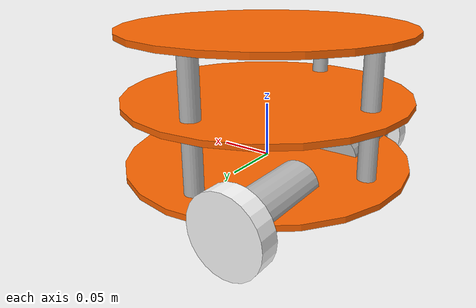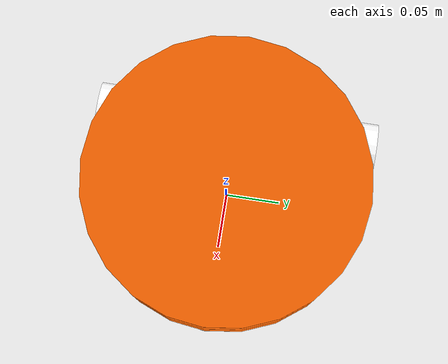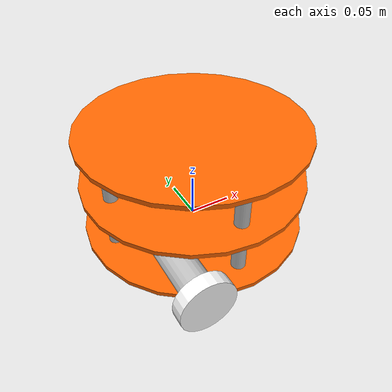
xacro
<?xml version="1.0"?>
<robot name="mrobot" xmlns:xacro="http://www.ros.org/wiki/xacro">
    <xacro:include filename="$(find lesson8_xacro)/urdf/common.urdf.xacro" />
    <xacro:include filename="$(find lesson8_xacro)/urdf/chassis.urdf.xacro" />
    <xacro:include filename="$(find lesson8_xacro)/urdf/brace.urdf.xacro" />
    <xacro:include filename="$(find lesson8_xacro)/urdf/high_joint.urdf.xacro" />

    <joint name="base_left_motor_joint" type="fixed">
        <origin xyz="-0.055 0.075 0.0" rpy="0.0 0.0 0.0"/>
        <parent link="base_link_0"/>
        <child link="left_motor"/>
    </joint>

    <link name="left_motor">
        <visual>
            <origin xyz="0.0 0.0 0.0" rpy="1.5707 0.0 0.0"/>
            <geometry>
                <cylinder radius="${motor_radius}" length="${motor_length}"/>
            </geometry>
            <material name="gray">
                <color rgba="0.75 0.75 0.75 1.0"/>
            </material>
        </visual>
    </link>

    <joint name="left_wheel_joint" type="continuous">
        <origin xyz="0.0 0.0485 0.0" rpy="0.0 0.0 0.0"/>
        <parent link="left_motor"/>
        <child link="left_wheel_link"/>
        <axis xyz="0.0 1.0 0.0"/>
    </joint>

    <link name="left_wheel_link">
        <visual>
            <origin xyz="0.0 0.0 0.0" rpy="1.5707 0.0 0.0"/>
            <geometry>
                <cylinder radius="${wheel_radius}" length="${wheel_length}"/>
            </geometry>
            <material name="white">
                <color rgba="1.0 1.0 1.0 0.9"/>
            </material>
        </visual>
    </link>

    <joint name="base_right_motor_joint" type="fixed">
        <origin xyz="-0.055 -0.075 0.0" rpy="0.0 0.0 0.0"/>
        <parent link="base_link_0"/>
        <child link="right_motor"/>
    </joint>

    <link name="right_motor">
        <visual>
            <origin xyz="0.0 0.0 0.0" rpy="1.5707 0 0"/>
            <geometry>
                <cylinder radius="${motor_radius}" length="${motor_length}"/>
            </geometry>
            <material name="gray">
                <color rgba="0.75 0.75 0.75 1"/>
            </material>
        </visual>
    </link>

    <joint name="right_wheel_joint" type="continuous">
        <origin xyz="0.0 -0.0485 0.0" rpy="0.0 0.0 0.0"/>
        <parent link="right_motor"/>
        <child link="right_wheel_link"/>
        <axis xyz="0.0 1.0 0.0"/>
    </joint>

    <link name="right_wheel_link">
        <visual>
            <origin xyz="0.0 0.0 0.0" rpy="1.5707 0.0 0.0"/>
            <geometry>
                <cylinder radius="${wheel_radius}" length="${wheel_length}"/>
            </geometry>
            <material name="white">
                <color rgba="1.0 1.0 1.0 0.9"/>
            </material>
        </visual>
    </link>

    <joint name="front_castor_joint" type="fixed">
        <origin xyz="0.1135 0.0 -0.0165" rpy="0.0 0.0 0.0"/>
        <parent link="base_link_0"/>
        <child link="front_castort_link"/>
        <axis xyz="0.0 1.0 0.0"/>
    </joint>

    <link name="front_castort_link">
        <visual>
            <origin xyz="0.0 0.0 0.0" rpy="1.5707 0.0 0.0"/>
            <geometry>
                <sphere radius="0.0165"/>
            </geometry>
            <material name="black">
                <color rgba="0.0 0.0 0.0 0.95"/>
            </material>
        </visual>
    </link>

    <xacro:robot_chassis index="0" />

    <xacro:robot_brace index="0" parent="base_link_0" />

    <xacro:robot_high_joint index="0" />

    <xacro:robot_chassis index="1" />

    <xacro:robot_brace index="1" parent="base_link_1" />

    <xacro:robot_high_joint index="1" />

    <xacro:robot_chassis index="2" />
</robot>

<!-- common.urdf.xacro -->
<robot xmlns:xacro="http://www.ros.org/wiki/xacro">
    <xacro:property name="chassis_radius" value="0.13" />
    <xacro:property name="chassis_length" value="0.005" />
    <xacro:property name="chassis_mass" value="2" />
    <xacro:property name="motor_radius" value="0.02" />
    <xacro:property name="motor_length" value="0.08" />
    <xacro:property name="wheel_radius" value="0.033" />
    <xacro:property name="wheel_length" value="0.017" />
    <xacro:property name="brace_length" value="0.06" />
    <xacro:property name="brace_radius" value="0.008" />
    <xacro:property name="brace_position" value="0.1" />
</robot>

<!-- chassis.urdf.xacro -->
<robot xmlns:xacro="http://www.ros.org/wiki/xacro">
    <xacro:macro name="robot_chassis" params="index">
        <link name="base_link_${index}">
            <inertial>
                <xacro:if value="${index == 0}">
                     <origin xyz="0.0 0.0 0" rpy="0.0 0.0 0.0"/>
                </xacro:if>
                <xacro:if value="${index != 0}">
                     <origin xyz="-${brace_position} 0.0 0" rpy="0.0 0.0 0.0"/>
                </xacro:if>
                <mass value="${chassis_mass}"/>
                <inertia ixx="0.01" ixy="0.0" ixz="0.0" iyy="0.1" iyz="0.0" izz="0.5"/>
            </inertial>

            <visual>
                <xacro:if value="${index == 0}">
                     <origin xyz="0.0 0.0 0" rpy="0.0 0.0 0.0"/>
                </xacro:if>
                <xacro:if value="${index != 0}">
                     <origin xyz="-${brace_position} 0.0 0" rpy="0.0 0.0 0.0"/>
                </xacro:if>
                <geometry>
                    <cylinder radius="${chassis_radius}" length="${chassis_length}"/>
                </geometry>
                <material name="yellow">
                    <color rgba="1 0.4 0 1"/>
                </material>
            </visual>

            <collision>
                <xacro:if value="${index == 0}">
                     <origin xyz="0.0 0.0 0" rpy="0.0 0.0 0.0"/>
                </xacro:if>
                <xacro:if value="${index != 0}">
                     <origin xyz="-${brace_position} 0.0 0" rpy="0.0 0.0 0.0"/>
                </xacro:if>
                <geometry>
                    <cylinder radius="${chassis_radius}" length="${chassis_length}"/>
                </geometry>
            </collision>
        </link>
    </xacro:macro>
</robot>

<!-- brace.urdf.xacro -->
<robot xmlns:xacro="http://www.ros.org/wiki/xacro">
    <xacro:macro name="robot_brace" params="index parent">
        <joint name="top_brace_low_joint_${index}" type="fixed">
            <xacro:if value="${index == 0}">
                <origin xyz="${brace_position} 0.0 ${brace_length / 2}" rpy="0.0 0.0 0.0"/>
            </xacro:if>
            <xacro:if value="${index == 1}">
                <origin xyz="0.0 0.0 ${brace_length / 2}" rpy="0.0 0.0 0.0"/>
            </xacro:if>
            <parent link="${parent}"/>
            <child link="top_brace_${index}"/>
        </joint>

        <link name="top_brace_${index}">
            <visual>
                <origin xyz="0.0 0.0 0.0" rpy="0.0 0.0 0.0"/>
                <geometry>
                    <cylinder radius="${brace_radius}" length="${brace_length}"/>
                </geometry>
                <material name="gray">
                    <color rgba="0.75 0.75 0.75 1.0"/>
                </material>
            </visual>
        </link>

        <joint name="left_brace_low_joint_${index}" type="fixed">
            <xacro:if value="${index == 0}">
                <origin xyz="-${brace_position} 0.0 ${brace_length / 2}" rpy="0.0 0.0 0.0"/>
            </xacro:if>
            <xacro:if value="${index == 1}">
                <origin xyz="-${brace_position * 2} 0.0 ${brace_length / 2}" rpy="0.0 0.0 0.0"/>
            </xacro:if>
            <parent link="${parent}"/>
            <child link="left_brace_${index}"/>
        </joint>

        <link name="left_brace_${index}">
            <visual>
                <origin xyz="0.0 0.0 0.0" rpy="0.0 0.0 0.0"/>
                <geometry>
                    <cylinder radius="${brace_radius}" length="${brace_length}"/>
                </geometry>
                <material name="gray">
                    <color rgba="0.75 0.75 0.75 1.0"/>
                </material>
            </visual>
        </link>

        <joint name="right_brace_low_joint_${index}" type="fixed">
            <xacro:if value="${index == 0}">
                <origin xyz="0.0 ${brace_position} ${brace_length / 2}" rpy="0.0 0.0 0.0"/>
            </xacro:if>
            <xacro:if value="${index == 1}">
                <origin xyz="-${brace_position} ${brace_position} ${brace_length / 2}" rpy="0.0 0.0 0.0"/>
            </xacro:if>
            <parent link="${parent}"/>
            <child link="right_brace_${index}"/>
        </joint>

        <link name="right_brace_${index}">
            <visual>
                <origin xyz="0.0 0.0 0.0" rpy="0.0 0.0 0.0"/>
                <geometry>
                    <cylinder radius="${brace_radius}" length="${brace_length}"/>
                </geometry>
                <material name="gray">
                    <color rgba="0.75 0.75 0.75 1.0"/>
                </material>
            </visual>
        </link>

        <joint name="bottom_brace_low_joint_${index}" type="fixed">
            <xacro:if value="${index == 0}">
                <origin xyz="0.0 -${brace_position} ${brace_length / 2}" rpy="0.0 0.0 0.0"/>
            </xacro:if>
            <xacro:if value="${index == 1}">
                <origin xyz="-${brace_position} -${brace_position} ${brace_length / 2}" rpy="0.0 0.0 0.0"/>
            </xacro:if>
            <parent link="${parent}"/>
            <child link="bottom_brace_${index}"/>
        </joint>

        <link name="bottom_brace_${index}">
            <visual>
                <origin xyz="0.0 0.0 0.0" rpy="0.0 0.0 0.0"/>
                <geometry>
                    <cylinder radius="${brace_radius}" length="${brace_length}"/>
                </geometry>
                <material name="gray">
                    <color rgba="0.75 0.75 0.75 1.0"/>
                </material>
            </visual>
        </link>
    </xacro:macro>
</robot>

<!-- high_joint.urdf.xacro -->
<robot xmlns:xacro="http://www.ros.org/wiki/xacro">
    <xacro:macro name="robot_high_joint" params="index">
        <joint name="top_brace_high_joint_${index}" type="fixed">
            <origin xyz="0.0 0.0 ${brace_length / 2}" rpy="0.0 0.0 0.0"/>
            <parent link="top_brace_${index}"/>
            <child link="base_link_${index + 1}"/>
        </joint>
    </xacro:macro>
</robot>
